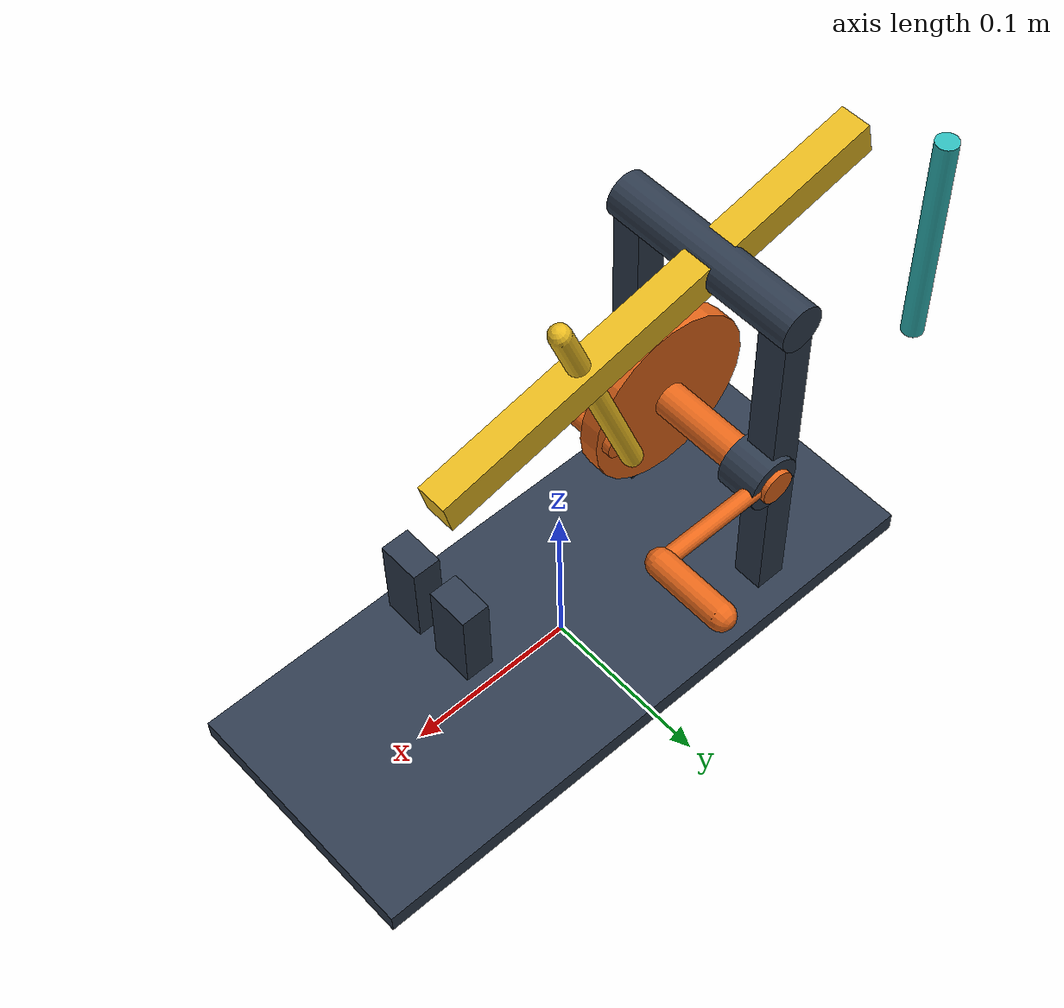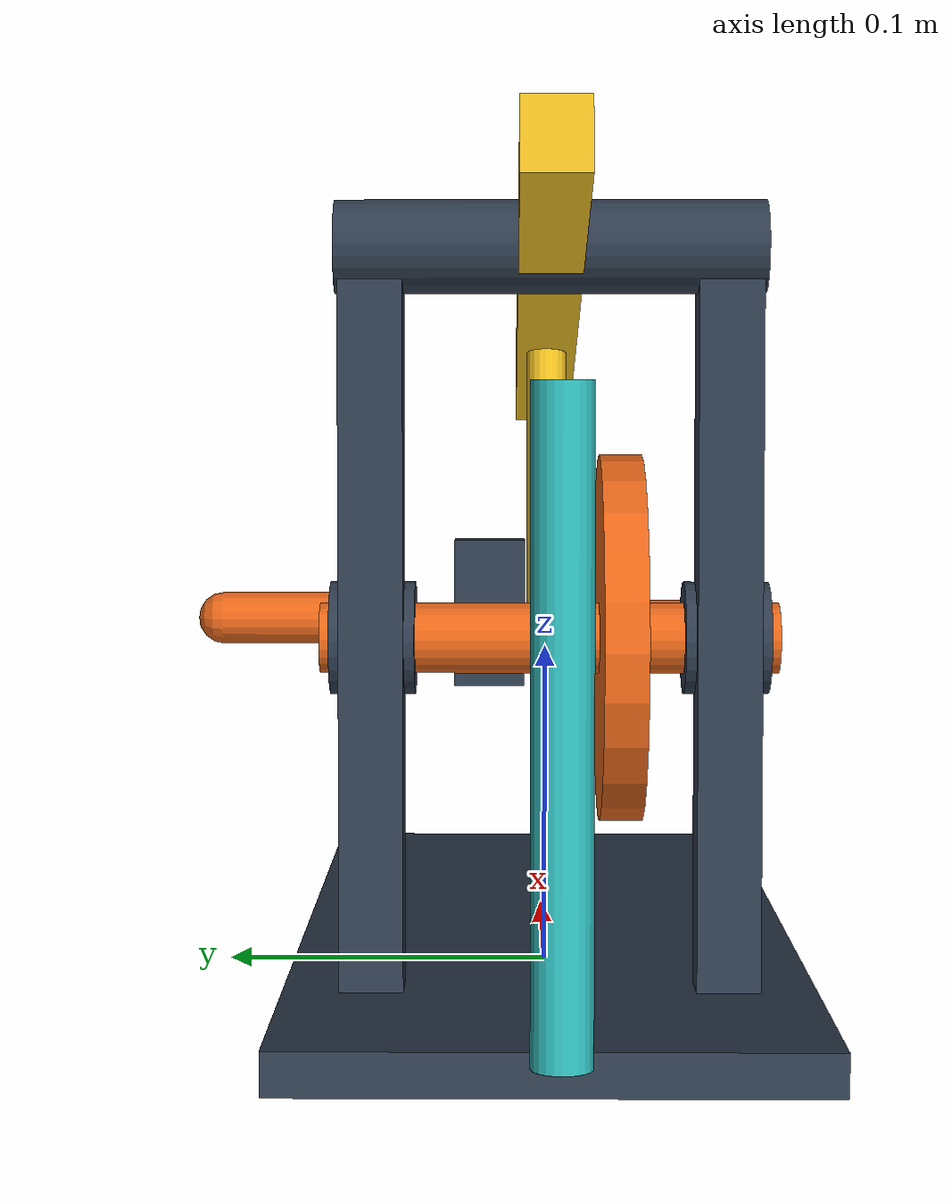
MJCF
<mujoco model="open_hand_cranked_pumpjack">
  <compiler angle="radian" coordinate="local" autolimits="true" meshdir="meshes" />
  <option timestep="0.002" gravity="0 0 -9.81" integrator="implicitfast" iterations="80" />
  <default>
    <joint damping="0.4" armature="0.002" />
    <geom density="900" friction="0.8 0.1 0.02" condim="3" />
  </default>
  <asset>
    <material name="frame" rgba="0.18 0.23 0.30 1" />
    <material name="input" rgba="0.90 0.40 0.10 1" />
    <material name="link" rgba="0.90 0.72 0.12 1" />
    <material name="output" rgba="0.18 0.72 0.72 1" />
  </asset>
  <worldbody>
    <light pos="0 -1 1.2" dir="0 1 -0.7" />
    <geom name="base_geom" type="box" pos="0 0 0.006" size="0.18 0.075 0.006" material="frame" />
    <geom name="left_support_geom" type="box" pos="-0.1 -0.05 0.111" size="0.009 0.009 0.105" material="frame" />
    <geom name="right_support_geom" type="box" pos="-0.1 0.05 0.111" size="0.009 0.009 0.105" material="frame" />
    <geom name="crank_bearing_left" type="cylinder" pos="-0.09 -0.05 0.11" size="0.016 0.012" quat="0.707107 0.707107 0 0" material="frame" />
    <geom name="crank_bearing_right" type="cylinder" pos="-0.09 0.05 0.11" size="0.016 0.012" quat="0.707107 0.707107 0 0" material="frame" />
    <geom name="beam_pivot" type="cylinder" pos="-0.1 0 0.22" size="0.013 0.06" quat="0.707107 0.707107 0 0" material="frame" />
    <geom name="guide_left" type="box" pos="0.08 -0.018 0.105" size="0.008 0.012 0.025" material="frame" />
    <geom name="guide_right" type="box" pos="0.08 0.018 0.105" size="0.008 0.012 0.025" material="frame" />

    <body name="crankshaft_input" pos="-0.09 0 0.11">
      <joint name="crankshaft_hinge" type="hinge" axis="0 1 0" limited="false" damping="0.25" />
      <geom name="crankshaft_input_geom" type="cylinder" size="0.010 0.065" quat="0.707107 0.707107 0 0" material="input" />
      <geom name="crank_disk_geom" type="cylinder" pos="0 -0.02 0" size="0.052 0.006" quat="0.707107 0.707107 0 0" material="input" />
      <geom name="hand_crank_arm" type="capsule" fromto="0 0.058 0 0.075 0.058 0" size="0.005" material="input" />
      <geom name="hand_crank_grip" type="capsule" fromto="0.075 0.058 0 0.075 0.10 0" size="0.008" material="input" />
      <body name="crank_pin" pos="0.04 -0.026 0">
        <geom name="crank_pin_geom" type="cylinder" size="0.008 0.017" quat="0.707107 0.707107 0 0" material="input" />
      </body>
    </body>

    <body name="pitman_rod" pos="-0.05 0 0.11" euler="0 0.347132773 0">
      <joint name="pitman_lower_pin" type="hinge" axis="0 1 0" damping="0.18" />
      <geom name="pitman_rod_geom" type="capsule" fromto="0 0 0 0 0 0.14" size="0.006" material="link" />
    </body>

    <body name="walking_beam" pos="-0.1 0 0.22" euler="0 0.218220657 0">
      <joint name="walking_beam_hinge" type="hinge" axis="0 1 0" limited="true" range="-0.8 0.8" damping="0.35" />
      <geom name="walking_beam_geom" type="box" pos="0.04 0 0" size="0.14 0.009 0.010" material="link" />
    </body>

    <body name="polished_rod_output" pos="-0.275731158 0 0.181031292">
      <joint name="polished_rod_slide" type="slide" axis="0 0 1" limited="true" range="-0.08 0.08" damping="1.2" />
      <geom name="polished_rod_geom" type="cylinder" pos="0 0 -0.075" size="0.007 0.075" material="output" />
    </body>
  </worldbody>
  <equality>
    <connect name="lower_pin_closure" body1="pitman_rod" body2="crank_pin" anchor="-0.05 0 0.11" solref="0.004 1" />
    <connect name="upper_pin_closure" body1="pitman_rod" body2="walking_beam" anchor="-0.00237158 0 0.24164928" solref="0.004 1" />
    <connect name="output_pin_closure" body1="walking_beam" body2="polished_rod_output" anchor="-0.275731158 0 0.181031292" solref="0.004 1" />
  </equality>
  <actuator>
    <motor name="hand_crank_motor" joint="crankshaft_hinge" gear="1" ctrlrange="-35 35" ctrllimited="true" />
  </actuator>
</mujoco>
